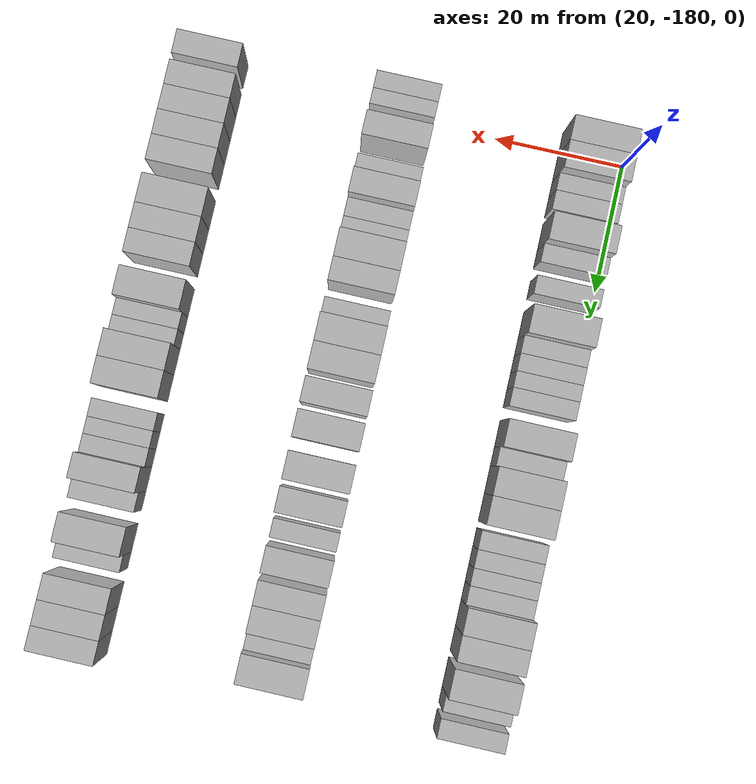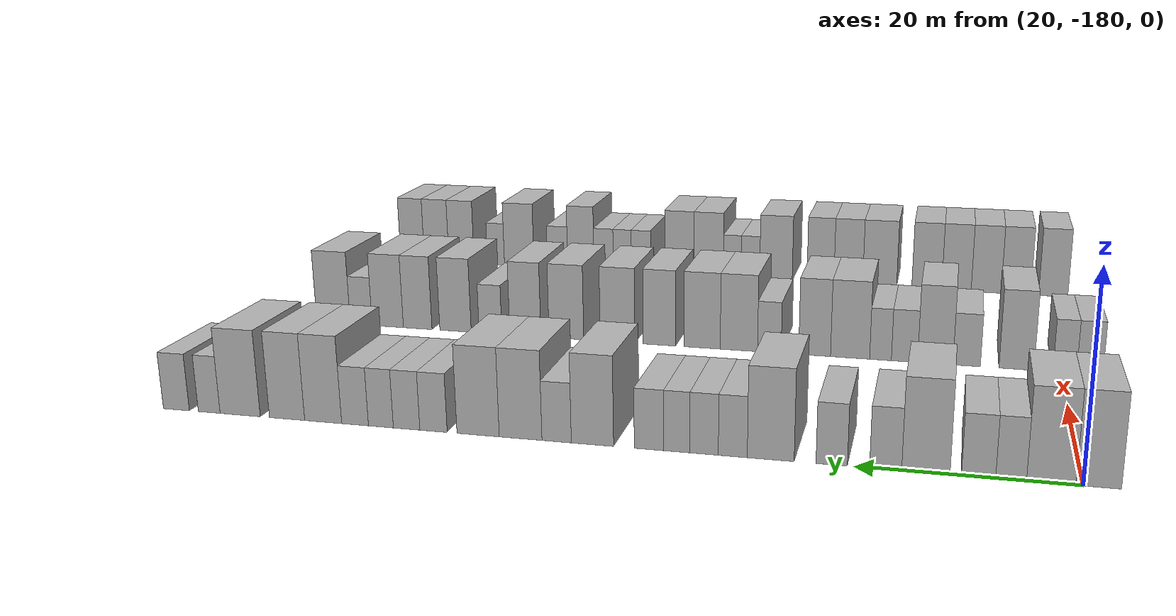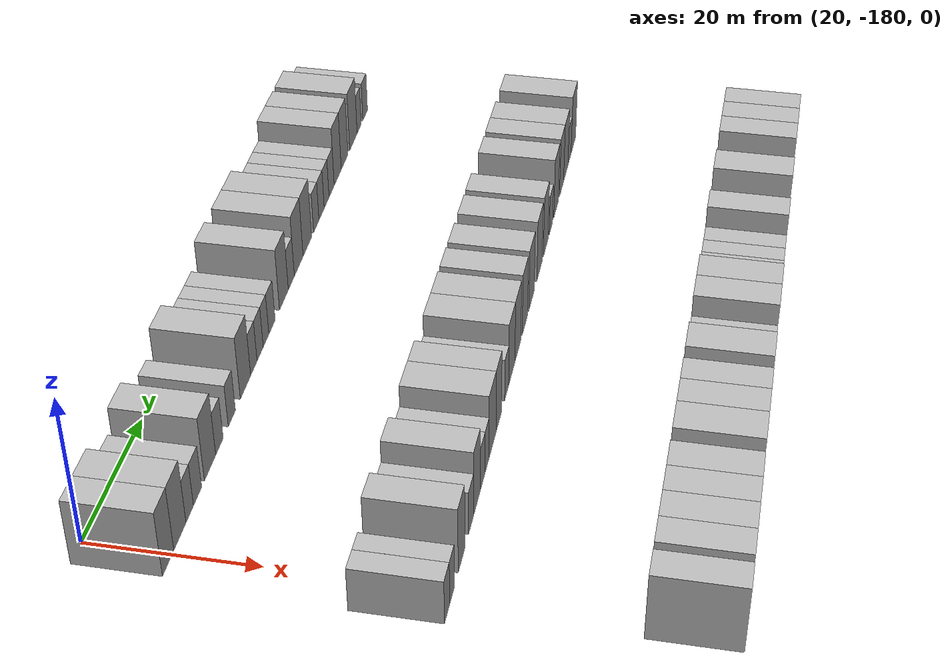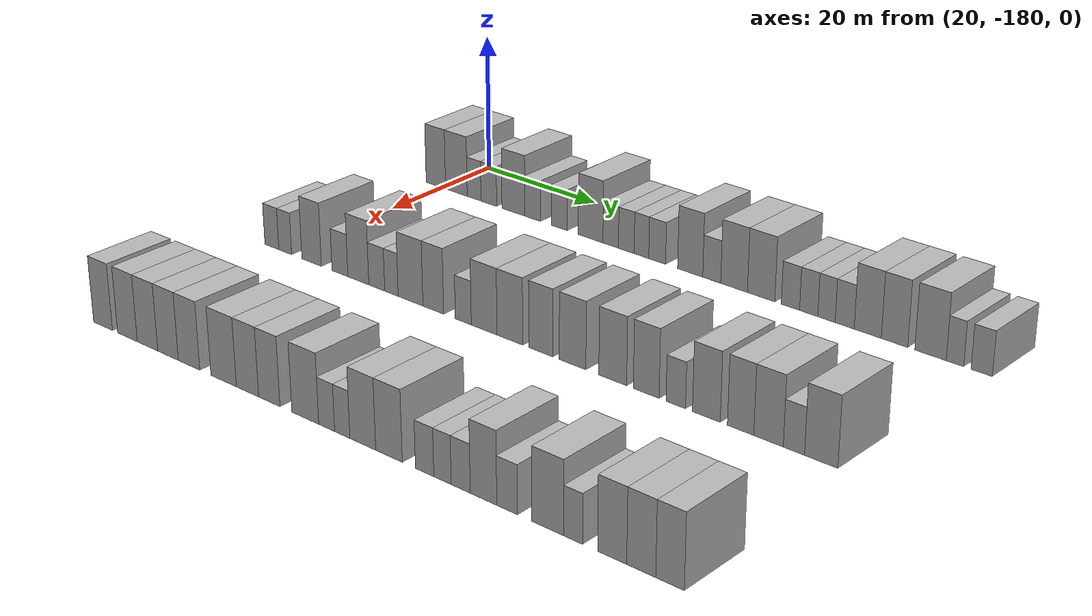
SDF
<sdf version="1.6">
 <world name="default">
  <model name="building_22">
   <static>1</static>
   <pose>25.0000 -181.2812 0 0.000000 0.000000 0.000000</pose>
   <link name="link">
    <pose>0 0 4.50 0 0 0</pose>
    <collision name="collision"><geometry><box><size>10.0000 3.8265 9.0000</size></box></geometry></collision>
    <visual name="visual">
     <cast_shadows>0</cast_shadows>
     <geometry><box><size>10.0000 3.8265 9.0000</size></box></geometry>
     <material>
      <script>
       <uri>model://HANNAS_wall/materials/scripts</uri>
       <uri>model://HANNAS_wall/materials/textures</uri>
       <name>vrc/HANNAS_wall</name>
      </script>
     </material>
    </visual>
   </link>
  </model>
  <model name="building_23">
   <static>1</static>
   <pose>25.0000 -177.2653 0 0.000000 0.000000 0.000000</pose>
   <link name="link">
    <pose>0 0 4.50 0 0 0</pose>
    <collision name="collision"><geometry><box><size>10.0000 4.2051 9.0000</size></box></geometry></collision>
    <visual name="visual">
     <cast_shadows>0</cast_shadows>
     <geometry><box><size>10.0000 4.2051 9.0000</size></box></geometry>
     <material>
      <script>
       <uri>model://HANNAS_wall/materials/scripts</uri>
       <uri>model://HANNAS_wall/materials/textures</uri>
       <name>vrc/HANNAS_wall</name>
      </script>
     </material>
    </visual>
   </link>
  </model>
  <model name="building_24">
   <static>1</static>
   <pose>25.0000 -173.8344 0 0.000000 0.000000 0.000000</pose>
   <link name="link">
    <pose>0 0 3.00 0 0 0</pose>
    <collision name="collision"><geometry><box><size>10.0000 2.6567 6.0000</size></box></geometry></collision>
    <visual name="visual">
     <cast_shadows>0</cast_shadows>
     <geometry><box><size>10.0000 2.6567 6.0000</size></box></geometry>
     <material>
      <script>
       <uri>model://HANNAS_wall/materials/scripts</uri>
       <uri>model://HANNAS_wall/materials/textures</uri>
       <name>vrc/HANNAS_wall</name>
      </script>
     </material>
    </visual>
   </link>
  </model>
  <model name="building_25">
   <static>1</static>
   <pose>25.0000 -171.0169 0 0.000000 0.000000 0.000000</pose>
   <link name="link">
    <pose>0 0 3.00 0 0 0</pose>
    <collision name="collision"><geometry><box><size>10.0000 2.9782 6.0000</size></box></geometry></collision>
    <visual name="visual">
     <cast_shadows>0</cast_shadows>
     <geometry><box><size>10.0000 2.9782 6.0000</size></box></geometry>
     <material>
      <script>
       <uri>model://HANNAS_wall/materials/scripts</uri>
       <uri>model://HANNAS_wall/materials/textures</uri>
       <name>vrc/HANNAS_wall</name>
      </script>
     </material>
    </visual>
   </link>
  </model>
  <model name="building_26">
   <static>1</static>
   <pose>25.0000 -166.3937 0 0.000000 0.000000 0.000000</pose>
   <link name="link">
    <pose>0 0 4.50 0 0 0</pose>
    <collision name="collision"><geometry><box><size>10.0000 4.2682 9.0000</size></box></geometry></collision>
    <visual name="visual">
     <cast_shadows>0</cast_shadows>
     <geometry><box><size>10.0000 4.2682 9.0000</size></box></geometry>
     <material>
      <script>
       <uri>model://HANNAS_wall/materials/scripts</uri>
       <uri>model://HANNAS_wall/materials/textures</uri>
       <name>vrc/HANNAS_wall</name>
      </script>
     </material>
    </visual>
   </link>
  </model>
  <model name="building_27">
   <static>1</static>
   <pose>25.0000 -162.8263 0 0.000000 0.000000 0.000000</pose>
   <link name="link">
    <pose>0 0 3.00 0 0 0</pose>
    <collision name="collision"><geometry><box><size>10.0000 2.8666 6.0000</size></box></geometry></collision>
    <visual name="visual">
     <cast_shadows>0</cast_shadows>
     <geometry><box><size>10.0000 2.8666 6.0000</size></box></geometry>
     <material>
      <script>
       <uri>model://HANNAS_wall/materials/scripts</uri>
       <uri>model://HANNAS_wall/materials/textures</uri>
       <name>vrc/HANNAS_wall</name>
      </script>
     </material>
    </visual>
   </link>
  </model>
  <model name="building_28">
   <static>1</static>
   <pose>25.0000 -157.9674 0 0.000000 0.000000 0.000000</pose>
   <link name="link">
    <pose>0 0 3.00 0 0 0</pose>
    <collision name="collision"><geometry><box><size>10.0000 2.8514 6.0000</size></box></geometry></collision>
    <visual name="visual">
     <cast_shadows>0</cast_shadows>
     <geometry><box><size>10.0000 2.8514 6.0000</size></box></geometry>
     <material>
      <script>
       <uri>model://HANNAS_wall/materials/scripts</uri>
       <uri>model://HANNAS_wall/materials/textures</uri>
       <name>vrc/HANNAS_wall</name>
      </script>
     </material>
    </visual>
   </link>
  </model>
  <model name="building_29">
   <static>1</static>
   <pose>25.0000 -152.3742 0 0.000000 0.000000 0.000000</pose>
   <link name="link">
    <pose>0 0 4.50 0 0 0</pose>
    <collision name="collision"><geometry><box><size>10.0000 4.3349 9.0000</size></box></geometry></collision>
    <visual name="visual">
     <cast_shadows>0</cast_shadows>
     <geometry><box><size>10.0000 4.3349 9.0000</size></box></geometry>
     <material>
      <script>
       <uri>model://HANNAS_wall/materials/scripts</uri>
       <uri>model://HANNAS_wall/materials/textures</uri>
       <name>vrc/HANNAS_wall</name>
      </script>
     </material>
    </visual>
   </link>
  </model>
  <model name="building_30">
   <static>1</static>
   <pose>25.0000 -148.8519 0 0.000000 0.000000 0.000000</pose>
   <link name="link">
    <pose>0 0 3.00 0 0 0</pose>
    <collision name="collision"><geometry><box><size>10.0000 2.7098 6.0000</size></box></geometry></collision>
    <visual name="visual">
     <cast_shadows>0</cast_shadows>
     <geometry><box><size>10.0000 2.7098 6.0000</size></box></geometry>
     <material>
      <script>
       <uri>model://HANNAS_wall/materials/scripts</uri>
       <uri>model://HANNAS_wall/materials/textures</uri>
       <name>vrc/HANNAS_wall</name>
      </script>
     </material>
    </visual>
   </link>
  </model>
  <model name="building_31">
   <static>1</static>
   <pose>25.0000 -146.1571 0 0.000000 0.000000 0.000000</pose>
   <link name="link">
    <pose>0 0 3.00 0 0 0</pose>
    <collision name="collision"><geometry><box><size>10.0000 2.6797 6.0000</size></box></geometry></collision>
    <visual name="visual">
     <cast_shadows>0</cast_shadows>
     <geometry><box><size>10.0000 2.6797 6.0000</size></box></geometry>
     <material>
      <script>
       <uri>model://HANNAS_wall/materials/scripts</uri>
       <uri>model://HANNAS_wall/materials/textures</uri>
       <name>vrc/HANNAS_wall</name>
      </script>
     </material>
    </visual>
   </link>
  </model>
  <model name="building_32">
   <static>1</static>
   <pose>25.0000 -143.5729 0 0.000000 0.000000 0.000000</pose>
   <link name="link">
    <pose>0 0 3.00 0 0 0</pose>
    <collision name="collision"><geometry><box><size>10.0000 2.4887 6.0000</size></box></geometry></collision>
    <visual name="visual">
     <cast_shadows>0</cast_shadows>
     <geometry><box><size>10.0000 2.4887 6.0000</size></box></geometry>
     <material>
      <script>
       <uri>model://HANNAS_wall/materials/scripts</uri>
       <uri>model://HANNAS_wall/materials/textures</uri>
       <name>vrc/HANNAS_wall</name>
      </script>
     </material>
    </visual>
   </link>
  </model>
  <model name="building_33">
   <static>1</static>
   <pose>25.0000 -140.9123 0 0.000000 0.000000 0.000000</pose>
   <link name="link">
    <pose>0 0 3.00 0 0 0</pose>
    <collision name="collision"><geometry><box><size>10.0000 2.8326 6.0000</size></box></geometry></collision>
    <visual name="visual">
     <cast_shadows>0</cast_shadows>
     <geometry><box><size>10.0000 2.8326 6.0000</size></box></geometry>
     <material>
      <script>
       <uri>model://HANNAS_wall/materials/scripts</uri>
       <uri>model://HANNAS_wall/materials/textures</uri>
       <name>vrc/HANNAS_wall</name>
      </script>
     </material>
    </visual>
   </link>
  </model>
  <model name="building_34">
   <static>1</static>
   <pose>25.0000 -135.4282 0 0.000000 0.000000 0.000000</pose>
   <link name="link">
    <pose>0 0 4.50 0 0 0</pose>
    <collision name="collision"><geometry><box><size>10.0000 4.1356 9.0000</size></box></geometry></collision>
    <visual name="visual">
     <cast_shadows>0</cast_shadows>
     <geometry><box><size>10.0000 4.1356 9.0000</size></box></geometry>
     <material>
      <script>
       <uri>model://HANNAS_wall/materials/scripts</uri>
       <uri>model://HANNAS_wall/materials/textures</uri>
       <name>vrc/HANNAS_wall</name>
      </script>
     </material>
    </visual>
   </link>
  </model>
  <model name="building_35">
   <static>1</static>
   <pose>25.0000 -131.9099 0 0.000000 0.000000 0.000000</pose>
   <link name="link">
    <pose>0 0 3.00 0 0 0</pose>
    <collision name="collision"><geometry><box><size>10.0000 2.9009 6.0000</size></box></geometry></collision>
    <visual name="visual">
     <cast_shadows>0</cast_shadows>
     <geometry><box><size>10.0000 2.9009 6.0000</size></box></geometry>
     <material>
      <script>
       <uri>model://HANNAS_wall/materials/scripts</uri>
       <uri>model://HANNAS_wall/materials/textures</uri>
       <name>vrc/HANNAS_wall</name>
      </script>
     </material>
    </visual>
   </link>
  </model>
  <model name="building_36">
   <static>1</static>
   <pose>25.0000 -128.3235 0 0.000000 0.000000 0.000000</pose>
   <link name="link">
    <pose>0 0 4.50 0 0 0</pose>
    <collision name="collision"><geometry><box><size>10.0000 4.2720 9.0000</size></box></geometry></collision>
    <visual name="visual">
     <cast_shadows>0</cast_shadows>
     <geometry><box><size>10.0000 4.2720 9.0000</size></box></geometry>
     <material>
      <script>
       <uri>model://HANNAS_wall/materials/scripts</uri>
       <uri>model://HANNAS_wall/materials/textures</uri>
       <name>vrc/HANNAS_wall</name>
      </script>
     </material>
    </visual>
   </link>
  </model>
  <model name="building_37">
   <static>1</static>
   <pose>25.0000 -124.0453 0 0.000000 0.000000 0.000000</pose>
   <link name="link">
    <pose>0 0 4.50 0 0 0</pose>
    <collision name="collision"><geometry><box><size>10.0000 4.2843 9.0000</size></box></geometry></collision>
    <visual name="visual">
     <cast_shadows>0</cast_shadows>
     <geometry><box><size>10.0000 4.2843 9.0000</size></box></geometry>
     <material>
      <script>
       <uri>model://HANNAS_wall/materials/scripts</uri>
       <uri>model://HANNAS_wall/materials/textures</uri>
       <name>vrc/HANNAS_wall</name>
      </script>
     </material>
    </visual>
   </link>
  </model>
  <model name="building_38">
   <static>1</static>
   <pose>25.0000 -119.4989 0 0.000000 0.000000 0.000000</pose>
   <link name="link">
    <pose>0 0 3.00 0 0 0</pose>
    <collision name="collision"><geometry><box><size>10.0000 2.8086 6.0000</size></box></geometry></collision>
    <visual name="visual">
     <cast_shadows>0</cast_shadows>
     <geometry><box><size>10.0000 2.8086 6.0000</size></box></geometry>
     <material>
      <script>
       <uri>model://HANNAS_wall/materials/scripts</uri>
       <uri>model://HANNAS_wall/materials/textures</uri>
       <name>vrc/HANNAS_wall</name>
      </script>
     </material>
    </visual>
   </link>
  </model>
  <model name="building_39">
   <static>1</static>
   <pose>25.0000 -116.7189 0 0.000000 0.000000 0.000000</pose>
   <link name="link">
    <pose>0 0 3.00 0 0 0</pose>
    <collision name="collision"><geometry><box><size>10.0000 2.7514 6.0000</size></box></geometry></collision>
    <visual name="visual">
     <cast_shadows>0</cast_shadows>
     <geometry><box><size>10.0000 2.7514 6.0000</size></box></geometry>
     <material>
      <script>
       <uri>model://HANNAS_wall/materials/scripts</uri>
       <uri>model://HANNAS_wall/materials/textures</uri>
       <name>vrc/HANNAS_wall</name>
      </script>
     </material>
    </visual>
   </link>
  </model>
  <model name="building_40">
   <static>1</static>
   <pose>25.0000 -114.0413 0 0.000000 0.000000 0.000000</pose>
   <link name="link">
    <pose>0 0 3.00 0 0 0</pose>
    <collision name="collision"><geometry><box><size>10.0000 2.6038 6.0000</size></box></geometry></collision>
    <visual name="visual">
     <cast_shadows>0</cast_shadows>
     <geometry><box><size>10.0000 2.6038 6.0000</size></box></geometry>
     <material>
      <script>
       <uri>model://HANNAS_wall/materials/scripts</uri>
       <uri>model://HANNAS_wall/materials/textures</uri>
       <name>vrc/HANNAS_wall</name>
      </script>
     </material>
    </visual>
   </link>
  </model>
  <model name="building_41">
   <static>1</static>
   <pose>25.0000 -111.3283 0 0.000000 0.000000 0.000000</pose>
   <link name="link">
    <pose>0 0 3.00 0 0 0</pose>
    <collision name="collision"><geometry><box><size>10.0000 2.8221 6.0000</size></box></geometry></collision>
    <visual name="visual">
     <cast_shadows>0</cast_shadows>
     <geometry><box><size>10.0000 2.8221 6.0000</size></box></geometry>
     <material>
      <script>
       <uri>model://HANNAS_wall/materials/scripts</uri>
       <uri>model://HANNAS_wall/materials/textures</uri>
       <name>vrc/HANNAS_wall</name>
      </script>
     </material>
    </visual>
   </link>
  </model>
  <model name="building_42">
   <static>1</static>
   <pose>25.0000 -107.9474 0 0.000000 0.000000 0.000000</pose>
   <link name="link">
    <pose>0 0 4.50 0 0 0</pose>
    <collision name="collision"><geometry><box><size>10.0000 3.9398 9.0000</size></box></geometry></collision>
    <visual name="visual">
     <cast_shadows>0</cast_shadows>
     <geometry><box><size>10.0000 3.9398 9.0000</size></box></geometry>
     <material>
      <script>
       <uri>model://HANNAS_wall/materials/scripts</uri>
       <uri>model://HANNAS_wall/materials/textures</uri>
       <name>vrc/HANNAS_wall</name>
      </script>
     </material>
    </visual>
   </link>
  </model>
  <model name="building_43">
   <static>1</static>
   <pose>25.0000 -104.0791 0 0.000000 0.000000 0.000000</pose>
   <link name="link">
    <pose>0 0 4.50 0 0 0</pose>
    <collision name="collision"><geometry><box><size>10.0000 3.7968 9.0000</size></box></geometry></collision>
    <visual name="visual">
     <cast_shadows>0</cast_shadows>
     <geometry><box><size>10.0000 3.7968 9.0000</size></box></geometry>
     <material>
      <script>
       <uri>model://HANNAS_wall/materials/scripts</uri>
       <uri>model://HANNAS_wall/materials/textures</uri>
       <name>vrc/HANNAS_wall</name>
      </script>
     </material>
    </visual>
   </link>
  </model>
  <model name="building_44">
   <static>1</static>
   <pose>25.0000 -98.9828 0 0.000000 0.000000 0.000000</pose>
   <link name="link">
    <pose>0 0 4.50 0 0 0</pose>
    <collision name="collision"><geometry><box><size>10.0000 4.3958 9.0000</size></box></geometry></collision>
    <visual name="visual">
     <cast_shadows>0</cast_shadows>
     <geometry><box><size>10.0000 4.3958 9.0000</size></box></geometry>
     <material>
      <script>
       <uri>model://HANNAS_wall/materials/scripts</uri>
       <uri>model://HANNAS_wall/materials/textures</uri>
       <name>vrc/HANNAS_wall</name>
      </script>
     </material>
    </visual>
   </link>
  </model>
  <model name="building_45">
   <static>1</static>
   <pose>25.0000 -95.5806 0 0.000000 0.000000 0.000000</pose>
   <link name="link">
    <pose>0 0 3.00 0 0 0</pose>
    <collision name="collision"><geometry><box><size>10.0000 2.4086 6.0000</size></box></geometry></collision>
    <visual name="visual">
     <cast_shadows>0</cast_shadows>
     <geometry><box><size>10.0000 2.4086 6.0000</size></box></geometry>
     <material>
      <script>
       <uri>model://HANNAS_wall/materials/scripts</uri>
       <uri>model://HANNAS_wall/materials/textures</uri>
       <name>vrc/HANNAS_wall</name>
      </script>
     </material>
    </visual>
   </link>
  </model>
  <model name="building_46">
   <static>1</static>
   <pose>25.0000 -91.9295 0 0.000000 0.000000 0.000000</pose>
   <link name="link">
    <pose>0 0 3.00 0 0 0</pose>
    <collision name="collision"><geometry><box><size>10.0000 2.8937 6.0000</size></box></geometry></collision>
    <visual name="visual">
     <cast_shadows>0</cast_shadows>
     <geometry><box><size>10.0000 2.8937 6.0000</size></box></geometry>
     <material>
      <script>
       <uri>model://HANNAS_wall/materials/scripts</uri>
       <uri>model://HANNAS_wall/materials/textures</uri>
       <name>vrc/HANNAS_wall</name>
      </script>
     </material>
    </visual>
   </link>
  </model>
  <model name="building_171">
   <static>1</static>
   <pose>55.0000 -182.9844 0 0.000000 0.000000 0.000000</pose>
   <link name="link">
    <pose>0 0 3.00 0 0 0</pose>
    <collision name="collision"><geometry><box><size>10.0000 2.7429 6.0000</size></box></geometry></collision>
    <visual name="visual">
     <cast_shadows>0</cast_shadows>
     <geometry><box><size>10.0000 2.7429 6.0000</size></box></geometry>
     <material>
      <script>
       <uri>model://HANNAS_wall/materials/scripts</uri>
       <uri>model://HANNAS_wall/materials/textures</uri>
       <name>vrc/HANNAS_wall</name>
      </script>
     </material>
    </visual>
   </link>
  </model>
  <model name="building_172">
   <static>1</static>
   <pose>55.0000 -180.3671 0 0.000000 0.000000 0.000000</pose>
   <link name="link">
    <pose>0 0 3.00 0 0 0</pose>
    <collision name="collision"><geometry><box><size>10.0000 2.4916 6.0000</size></box></geometry></collision>
    <visual name="visual">
     <cast_shadows>0</cast_shadows>
     <geometry><box><size>10.0000 2.4916 6.0000</size></box></geometry>
     <material>
      <script>
       <uri>model://HANNAS_wall/materials/scripts</uri>
       <uri>model://HANNAS_wall/materials/textures</uri>
       <name>vrc/HANNAS_wall</name>
      </script>
     </material>
    </visual>
   </link>
  </model>
  <model name="building_173">
   <static>1</static>
   <pose>55.0000 -175.2502 0 0.000000 0.000000 0.000000</pose>
   <link name="link">
    <pose>0 0 4.50 0 0 0</pose>
    <collision name="collision"><geometry><box><size>10.0000 3.7422 9.0000</size></box></geometry></collision>
    <visual name="visual">
     <cast_shadows>0</cast_shadows>
     <geometry><box><size>10.0000 3.7422 9.0000</size></box></geometry>
     <material>
      <script>
       <uri>model://HANNAS_wall/materials/scripts</uri>
       <uri>model://HANNAS_wall/materials/textures</uri>
       <name>vrc/HANNAS_wall</name>
      </script>
     </material>
    </visual>
   </link>
  </model>
  <model name="building_174">
   <static>1</static>
   <pose>55.0000 -169.8975 0 0.000000 0.000000 0.000000</pose>
   <link name="link">
    <pose>0 0 3.00 0 0 0</pose>
    <collision name="collision"><geometry><box><size>10.0000 2.9632 6.0000</size></box></geometry></collision>
    <visual name="visual">
     <cast_shadows>0</cast_shadows>
     <geometry><box><size>10.0000 2.9632 6.0000</size></box></geometry>
     <material>
      <script>
       <uri>model://HANNAS_wall/materials/scripts</uri>
       <uri>model://HANNAS_wall/materials/textures</uri>
       <name>vrc/HANNAS_wall</name>
      </script>
     </material>
    </visual>
   </link>
  </model>
  <model name="building_175">
   <static>1</static>
   <pose>55.0000 -166.4838 0 0.000000 0.000000 0.000000</pose>
   <link name="link">
    <pose>0 0 4.50 0 0 0</pose>
    <collision name="collision"><geometry><box><size>10.0000 3.8642 9.0000</size></box></geometry></collision>
    <visual name="visual">
     <cast_shadows>0</cast_shadows>
     <geometry><box><size>10.0000 3.8642 9.0000</size></box></geometry>
     <material>
      <script>
       <uri>model://HANNAS_wall/materials/scripts</uri>
       <uri>model://HANNAS_wall/materials/textures</uri>
       <name>vrc/HANNAS_wall</name>
      </script>
     </material>
    </visual>
   </link>
  </model>
  <model name="building_176">
   <static>1</static>
   <pose>55.0000 -163.1049 0 0.000000 0.000000 0.000000</pose>
   <link name="link">
    <pose>0 0 3.00 0 0 0</pose>
    <collision name="collision"><geometry><box><size>10.0000 2.8937 6.0000</size></box></geometry></collision>
    <visual name="visual">
     <cast_shadows>0</cast_shadows>
     <geometry><box><size>10.0000 2.8937 6.0000</size></box></geometry>
     <material>
      <script>
       <uri>model://HANNAS_wall/materials/scripts</uri>
       <uri>model://HANNAS_wall/materials/textures</uri>
       <name>vrc/HANNAS_wall</name>
      </script>
     </material>
    </visual>
   </link>
  </model>
  <model name="building_177">
   <static>1</static>
   <pose>55.0000 -160.4513 0 0.000000 0.000000 0.000000</pose>
   <link name="link">
    <pose>0 0 3.00 0 0 0</pose>
    <collision name="collision"><geometry><box><size>10.0000 2.4135 6.0000</size></box></geometry></collision>
    <visual name="visual">
     <cast_shadows>0</cast_shadows>
     <geometry><box><size>10.0000 2.4135 6.0000</size></box></geometry>
     <material>
      <script>
       <uri>model://HANNAS_wall/materials/scripts</uri>
       <uri>model://HANNAS_wall/materials/textures</uri>
       <name>vrc/HANNAS_wall</name>
      </script>
     </material>
    </visual>
   </link>
  </model>
  <model name="building_178">
   <static>1</static>
   <pose>55.0000 -157.0525 0 0.000000 0.000000 0.000000</pose>
   <link name="link">
    <pose>0 0 4.50 0 0 0</pose>
    <collision name="collision"><geometry><box><size>10.0000 4.3841 9.0000</size></box></geometry></collision>
    <visual name="visual">
     <cast_shadows>0</cast_shadows>
     <geometry><box><size>10.0000 4.3841 9.0000</size></box></geometry>
     <material>
      <script>
       <uri>model://HANNAS_wall/materials/scripts</uri>
       <uri>model://HANNAS_wall/materials/textures</uri>
       <name>vrc/HANNAS_wall</name>
      </script>
     </material>
    </visual>
   </link>
  </model>
  <model name="building_179">
   <static>1</static>
   <pose>55.0000 -153.0569 0 0.000000 0.000000 0.000000</pose>
   <link name="link">
    <pose>0 0 4.50 0 0 0</pose>
    <collision name="collision"><geometry><box><size>10.0000 3.6070 9.0000</size></box></geometry></collision>
    <visual name="visual">
     <cast_shadows>0</cast_shadows>
     <geometry><box><size>10.0000 3.6070 9.0000</size></box></geometry>
     <material>
      <script>
       <uri>model://HANNAS_wall/materials/scripts</uri>
       <uri>model://HANNAS_wall/materials/textures</uri>
       <name>vrc/HANNAS_wall</name>
      </script>
     </material>
    </visual>
   </link>
  </model>
  <model name="building_180">
   <static>1</static>
   <pose>55.0000 -147.8962 0 0.000000 0.000000 0.000000</pose>
   <link name="link">
    <pose>0 0 3.00 0 0 0</pose>
    <collision name="collision"><geometry><box><size>10.0000 2.7145 6.0000</size></box></geometry></collision>
    <visual name="visual">
     <cast_shadows>0</cast_shadows>
     <geometry><box><size>10.0000 2.7145 6.0000</size></box></geometry>
     <material>
      <script>
       <uri>model://HANNAS_wall/materials/scripts</uri>
       <uri>model://HANNAS_wall/materials/textures</uri>
       <name>vrc/HANNAS_wall</name>
      </script>
     </material>
    </visual>
   </link>
  </model>
  <model name="building_181">
   <static>1</static>
   <pose>55.0000 -144.3848 0 0.000000 0.000000 0.000000</pose>
   <link name="link">
    <pose>0 0 4.50 0 0 0</pose>
    <collision name="collision"><geometry><box><size>10.0000 4.3083 9.0000</size></box></geometry></collision>
    <visual name="visual">
     <cast_shadows>0</cast_shadows>
     <geometry><box><size>10.0000 4.3083 9.0000</size></box></geometry>
     <material>
      <script>
       <uri>model://HANNAS_wall/materials/scripts</uri>
       <uri>model://HANNAS_wall/materials/textures</uri>
       <name>vrc/HANNAS_wall</name>
      </script>
     </material>
    </visual>
   </link>
  </model>
  <model name="building_182">
   <static>1</static>
   <pose>55.0000 -140.1165 0 0.000000 0.000000 0.000000</pose>
   <link name="link">
    <pose>0 0 4.50 0 0 0</pose>
    <collision name="collision"><geometry><box><size>10.0000 4.2282 9.0000</size></box></geometry></collision>
    <visual name="visual">
     <cast_shadows>0</cast_shadows>
     <geometry><box><size>10.0000 4.2282 9.0000</size></box></geometry>
     <material>
      <script>
       <uri>model://HANNAS_wall/materials/scripts</uri>
       <uri>model://HANNAS_wall/materials/textures</uri>
       <name>vrc/HANNAS_wall</name>
      </script>
     </material>
    </visual>
   </link>
  </model>
  <model name="building_183">
   <static>1</static>
   <pose>55.0000 -135.0719 0 0.000000 0.000000 0.000000</pose>
   <link name="link">
    <pose>0 0 4.50 0 0 0</pose>
    <collision name="collision"><geometry><box><size>10.0000 3.8611 9.0000</size></box></geometry></collision>
    <visual name="visual">
     <cast_shadows>0</cast_shadows>
     <geometry><box><size>10.0000 3.8611 9.0000</size></box></geometry>
     <material>
      <script>
       <uri>model://HANNAS_wall/materials/scripts</uri>
       <uri>model://HANNAS_wall/materials/textures</uri>
       <name>vrc/HANNAS_wall</name>
      </script>
     </material>
    </visual>
   </link>
  </model>
  <model name="building_184">
   <static>1</static>
   <pose>55.0000 -130.0602 0 0.000000 0.000000 0.000000</pose>
   <link name="link">
    <pose>0 0 4.50 0 0 0</pose>
    <collision name="collision"><geometry><box><size>10.0000 4.1622 9.0000</size></box></geometry></collision>
    <visual name="visual">
     <cast_shadows>0</cast_shadows>
     <geometry><box><size>10.0000 4.1622 9.0000</size></box></geometry>
     <material>
      <script>
       <uri>model://HANNAS_wall/materials/scripts</uri>
       <uri>model://HANNAS_wall/materials/textures</uri>
       <name>vrc/HANNAS_wall</name>
      </script>
     </material>
    </visual>
   </link>
  </model>
  <model name="building_185">
   <static>1</static>
   <pose>55.0000 -123.8568 0 0.000000 0.000000 0.000000</pose>
   <link name="link">
    <pose>0 0 4.50 0 0 0</pose>
    <collision name="collision"><geometry><box><size>10.0000 4.2445 9.0000</size></box></geometry></collision>
    <visual name="visual">
     <cast_shadows>0</cast_shadows>
     <geometry><box><size>10.0000 4.2445 9.0000</size></box></geometry>
     <material>
      <script>
       <uri>model://HANNAS_wall/materials/scripts</uri>
       <uri>model://HANNAS_wall/materials/textures</uri>
       <name>vrc/HANNAS_wall</name>
      </script>
     </material>
    </visual>
   </link>
  </model>
  <model name="building_186">
   <static>1</static>
   <pose>55.0000 -118.8119 0 0.000000 0.000000 0.000000</pose>
   <link name="link">
    <pose>0 0 4.50 0 0 0</pose>
    <collision name="collision"><geometry><box><size>10.0000 3.8454 9.0000</size></box></geometry></collision>
    <visual name="visual">
     <cast_shadows>0</cast_shadows>
     <geometry><box><size>10.0000 3.8454 9.0000</size></box></geometry>
     <material>
      <script>
       <uri>model://HANNAS_wall/materials/scripts</uri>
       <uri>model://HANNAS_wall/materials/textures</uri>
       <name>vrc/HANNAS_wall</name>
      </script>
     </material>
    </visual>
   </link>
  </model>
  <model name="building_187">
   <static>1</static>
   <pose>55.0000 -114.4673 0 0.000000 0.000000 0.000000</pose>
   <link name="link">
    <pose>0 0 3.00 0 0 0</pose>
    <collision name="collision"><geometry><box><size>10.0000 2.8437 6.0000</size></box></geometry></collision>
    <visual name="visual">
     <cast_shadows>0</cast_shadows>
     <geometry><box><size>10.0000 2.8437 6.0000</size></box></geometry>
     <material>
      <script>
       <uri>model://HANNAS_wall/materials/scripts</uri>
       <uri>model://HANNAS_wall/materials/textures</uri>
       <name>vrc/HANNAS_wall</name>
      </script>
     </material>
    </visual>
   </link>
  </model>
  <model name="building_188">
   <static>1</static>
   <pose>55.0000 -110.0602 0 0.000000 0.000000 0.000000</pose>
   <link name="link">
    <pose>0 0 4.50 0 0 0</pose>
    <collision name="collision"><geometry><box><size>10.0000 3.9705 9.0000</size></box></geometry></collision>
    <visual name="visual">
     <cast_shadows>0</cast_shadows>
     <geometry><box><size>10.0000 3.9705 9.0000</size></box></geometry>
     <material>
      <script>
       <uri>model://HANNAS_wall/materials/scripts</uri>
       <uri>model://HANNAS_wall/materials/textures</uri>
       <name>vrc/HANNAS_wall</name>
      </script>
     </material>
    </visual>
   </link>
  </model>
  <model name="building_189">
   <static>1</static>
   <pose>55.0000 -105.2402 0 0.000000 0.000000 0.000000</pose>
   <link name="link">
    <pose>0 0 4.50 0 0 0</pose>
    <collision name="collision"><geometry><box><size>10.0000 3.6695 9.0000</size></box></geometry></collision>
    <visual name="visual">
     <cast_shadows>0</cast_shadows>
     <geometry><box><size>10.0000 3.6695 9.0000</size></box></geometry>
     <material>
      <script>
       <uri>model://HANNAS_wall/materials/scripts</uri>
       <uri>model://HANNAS_wall/materials/textures</uri>
       <name>vrc/HANNAS_wall</name>
      </script>
     </material>
    </visual>
   </link>
  </model>
  <model name="building_190">
   <static>1</static>
   <pose>55.0000 -101.3886 0 0.000000 0.000000 0.000000</pose>
   <link name="link">
    <pose>0 0 4.50 0 0 0</pose>
    <collision name="collision"><geometry><box><size>10.0000 4.0338 9.0000</size></box></geometry></collision>
    <visual name="visual">
     <cast_shadows>0</cast_shadows>
     <geometry><box><size>10.0000 4.0338 9.0000</size></box></geometry>
     <material>
      <script>
       <uri>model://HANNAS_wall/materials/scripts</uri>
       <uri>model://HANNAS_wall/materials/textures</uri>
       <name>vrc/HANNAS_wall</name>
      </script>
     </material>
    </visual>
   </link>
  </model>
  <model name="building_191">
   <static>1</static>
   <pose>55.0000 -97.9466 0 0.000000 0.000000 0.000000</pose>
   <link name="link">
    <pose>0 0 3.00 0 0 0</pose>
    <collision name="collision"><geometry><box><size>10.0000 2.8502 6.0000</size></box></geometry></collision>
    <visual name="visual">
     <cast_shadows>0</cast_shadows>
     <geometry><box><size>10.0000 2.8502 6.0000</size></box></geometry>
     <material>
      <script>
       <uri>model://HANNAS_wall/materials/scripts</uri>
       <uri>model://HANNAS_wall/materials/textures</uri>
       <name>vrc/HANNAS_wall</name>
      </script>
     </material>
    </visual>
   </link>
  </model>
  <model name="building_192">
   <static>1</static>
   <pose>55.0000 -94.3193 0 0.000000 0.000000 0.000000</pose>
   <link name="link">
    <pose>0 0 4.50 0 0 0</pose>
    <collision name="collision"><geometry><box><size>10.0000 4.4044 9.0000</size></box></geometry></collision>
    <visual name="visual">
     <cast_shadows>0</cast_shadows>
     <geometry><box><size>10.0000 4.4044 9.0000</size></box></geometry>
     <material>
      <script>
       <uri>model://HANNAS_wall/materials/scripts</uri>
       <uri>model://HANNAS_wall/materials/textures</uri>
       <name>vrc/HANNAS_wall</name>
      </script>
     </material>
    </visual>
   </link>
  </model>
  <model name="building_312">
   <static>1</static>
   <pose>85.0000 -180.8519 0 0.000000 0.000000 0.000000</pose>
   <link name="link">
    <pose>0 0 4.50 0 0 0</pose>
    <collision name="collision"><geometry><box><size>10.0000 3.6800 9.0000</size></box></geometry></collision>
    <visual name="visual">
     <cast_shadows>0</cast_shadows>
     <geometry><box><size>10.0000 3.6800 9.0000</size></box></geometry>
     <material>
      <script>
       <uri>model://HANNAS_wall/materials/scripts</uri>
       <uri>model://HANNAS_wall/materials/textures</uri>
       <name>vrc/HANNAS_wall</name>
      </script>
     </material>
    </visual>
   </link>
  </model>
  <model name="building_313">
   <static>1</static>
   <pose>85.0000 -176.1287 0 0.000000 0.000000 0.000000</pose>
   <link name="link">
    <pose>0 0 4.50 0 0 0</pose>
    <collision name="collision"><geometry><box><size>10.0000 3.7664 9.0000</size></box></geometry></collision>
    <visual name="visual">
     <cast_shadows>0</cast_shadows>
     <geometry><box><size>10.0000 3.7664 9.0000</size></box></geometry>
     <material>
      <script>
       <uri>model://HANNAS_wall/materials/scripts</uri>
       <uri>model://HANNAS_wall/materials/textures</uri>
       <name>vrc/HANNAS_wall</name>
      </script>
     </material>
    </visual>
   </link>
  </model>
  <model name="building_314">
   <static>1</static>
   <pose>85.0000 -172.3147 0 0.000000 0.000000 0.000000</pose>
   <link name="link">
    <pose>0 0 4.50 0 0 0</pose>
    <collision name="collision"><geometry><box><size>10.0000 3.8616 9.0000</size></box></geometry></collision>
    <visual name="visual">
     <cast_shadows>0</cast_shadows>
     <geometry><box><size>10.0000 3.8616 9.0000</size></box></geometry>
     <material>
      <script>
       <uri>model://HANNAS_wall/materials/scripts</uri>
       <uri>model://HANNAS_wall/materials/textures</uri>
       <name>vrc/HANNAS_wall</name>
      </script>
     </material>
    </visual>
   </link>
  </model>
  <model name="building_315">
   <static>1</static>
   <pose>85.0000 -168.4760 0 0.000000 0.000000 0.000000</pose>
   <link name="link">
    <pose>0 0 4.50 0 0 0</pose>
    <collision name="collision"><geometry><box><size>10.0000 3.8157 9.0000</size></box></geometry></collision>
    <visual name="visual">
     <cast_shadows>0</cast_shadows>
     <geometry><box><size>10.0000 3.8157 9.0000</size></box></geometry>
     <material>
      <script>
       <uri>model://HANNAS_wall/materials/scripts</uri>
       <uri>model://HANNAS_wall/materials/textures</uri>
       <name>vrc/HANNAS_wall</name>
      </script>
     </material>
    </visual>
   </link>
  </model>
  <model name="building_316">
   <static>1</static>
   <pose>85.0000 -164.6145 0 0.000000 0.000000 0.000000</pose>
   <link name="link">
    <pose>0 0 4.50 0 0 0</pose>
    <collision name="collision"><geometry><box><size>10.0000 3.9074 9.0000</size></box></geometry></collision>
    <visual name="visual">
     <cast_shadows>0</cast_shadows>
     <geometry><box><size>10.0000 3.9074 9.0000</size></box></geometry>
     <material>
      <script>
       <uri>model://HANNAS_wall/materials/scripts</uri>
       <uri>model://HANNAS_wall/materials/textures</uri>
       <name>vrc/HANNAS_wall</name>
      </script>
     </material>
    </visual>
   </link>
  </model>
  <model name="building_317">
   <static>1</static>
   <pose>85.0000 -158.4135 0 0.000000 0.000000 0.000000</pose>
   <link name="link">
    <pose>0 0 4.50 0 0 0</pose>
    <collision name="collision"><geometry><box><size>10.0000 4.4945 9.0000</size></box></geometry></collision>
    <visual name="visual">
     <cast_shadows>0</cast_shadows>
     <geometry><box><size>10.0000 4.4945 9.0000</size></box></geometry>
     <material>
      <script>
       <uri>model://HANNAS_wall/materials/scripts</uri>
       <uri>model://HANNAS_wall/materials/textures</uri>
       <name>vrc/HANNAS_wall</name>
      </script>
     </material>
    </visual>
   </link>
  </model>
  <model name="building_318">
   <static>1</static>
   <pose>85.0000 -154.2337 0 0.000000 0.000000 0.000000</pose>
   <link name="link">
    <pose>0 0 4.50 0 0 0</pose>
    <collision name="collision"><geometry><box><size>10.0000 3.8651 9.0000</size></box></geometry></collision>
    <visual name="visual">
     <cast_shadows>0</cast_shadows>
     <geometry><box><size>10.0000 3.8651 9.0000</size></box></geometry>
     <material>
      <script>
       <uri>model://HANNAS_wall/materials/scripts</uri>
       <uri>model://HANNAS_wall/materials/textures</uri>
       <name>vrc/HANNAS_wall</name>
      </script>
     </material>
    </visual>
   </link>
  </model>
  <model name="building_319">
   <static>1</static>
   <pose>85.0000 -150.4847 0 0.000000 0.000000 0.000000</pose>
   <link name="link">
    <pose>0 0 4.50 0 0 0</pose>
    <collision name="collision"><geometry><box><size>10.0000 3.6330 9.0000</size></box></geometry></collision>
    <visual name="visual">
     <cast_shadows>0</cast_shadows>
     <geometry><box><size>10.0000 3.6330 9.0000</size></box></geometry>
     <material>
      <script>
       <uri>model://HANNAS_wall/materials/scripts</uri>
       <uri>model://HANNAS_wall/materials/textures</uri>
       <name>vrc/HANNAS_wall</name>
      </script>
     </material>
    </visual>
   </link>
  </model>
  <model name="building_320">
   <static>1</static>
   <pose>85.0000 -144.4442 0 0.000000 0.000000 0.000000</pose>
   <link name="link">
    <pose>0 0 4.50 0 0 0</pose>
    <collision name="collision"><geometry><box><size>10.0000 4.4480 9.0000</size></box></geometry></collision>
    <visual name="visual">
     <cast_shadows>0</cast_shadows>
     <geometry><box><size>10.0000 4.4480 9.0000</size></box></geometry>
     <material>
      <script>
       <uri>model://HANNAS_wall/materials/scripts</uri>
       <uri>model://HANNAS_wall/materials/textures</uri>
       <name>vrc/HANNAS_wall</name>
      </script>
     </material>
    </visual>
   </link>
  </model>
  <model name="building_321">
   <static>1</static>
   <pose>85.0000 -140.9321 0 0.000000 0.000000 0.000000</pose>
   <link name="link">
    <pose>0 0 3.00 0 0 0</pose>
    <collision name="collision"><geometry><box><size>10.0000 2.5763 6.0000</size></box></geometry></collision>
    <visual name="visual">
     <cast_shadows>0</cast_shadows>
     <geometry><box><size>10.0000 2.5763 6.0000</size></box></geometry>
     <material>
      <script>
       <uri>model://HANNAS_wall/materials/scripts</uri>
       <uri>model://HANNAS_wall/materials/textures</uri>
       <name>vrc/HANNAS_wall</name>
      </script>
     </material>
    </visual>
   </link>
  </model>
  <model name="building_322">
   <static>1</static>
   <pose>85.0000 -138.4173 0 0.000000 0.000000 0.000000</pose>
   <link name="link">
    <pose>0 0 3.00 0 0 0</pose>
    <collision name="collision"><geometry><box><size>10.0000 2.4532 6.0000</size></box></geometry></collision>
    <visual name="visual">
     <cast_shadows>0</cast_shadows>
     <geometry><box><size>10.0000 2.4532 6.0000</size></box></geometry>
     <material>
      <script>
       <uri>model://HANNAS_wall/materials/scripts</uri>
       <uri>model://HANNAS_wall/materials/textures</uri>
       <name>vrc/HANNAS_wall</name>
      </script>
     </material>
    </visual>
   </link>
  </model>
  <model name="building_323">
   <static>1</static>
   <pose>85.0000 -135.1499 0 0.000000 0.000000 0.000000</pose>
   <link name="link">
    <pose>0 0 4.50 0 0 0</pose>
    <collision name="collision"><geometry><box><size>10.0000 4.0816 9.0000</size></box></geometry></collision>
    <visual name="visual">
     <cast_shadows>0</cast_shadows>
     <geometry><box><size>10.0000 4.0816 9.0000</size></box></geometry>
     <material>
      <script>
       <uri>model://HANNAS_wall/materials/scripts</uri>
       <uri>model://HANNAS_wall/materials/textures</uri>
       <name>vrc/HANNAS_wall</name>
      </script>
     </material>
    </visual>
   </link>
  </model>
  <model name="building_324">
   <static>1</static>
   <pose>85.0000 -131.0511 0 0.000000 0.000000 0.000000</pose>
   <link name="link">
    <pose>0 0 4.50 0 0 0</pose>
    <collision name="collision"><geometry><box><size>10.0000 4.1160 9.0000</size></box></geometry></collision>
    <visual name="visual">
     <cast_shadows>0</cast_shadows>
     <geometry><box><size>10.0000 4.1160 9.0000</size></box></geometry>
     <material>
      <script>
       <uri>model://HANNAS_wall/materials/scripts</uri>
       <uri>model://HANNAS_wall/materials/textures</uri>
       <name>vrc/HANNAS_wall</name>
      </script>
     </material>
    </visual>
   </link>
  </model>
  <model name="building_325">
   <static>1</static>
   <pose>85.0000 -125.6083 0 0.000000 0.000000 0.000000</pose>
   <link name="link">
    <pose>0 0 3.00 0 0 0</pose>
    <collision name="collision"><geometry><box><size>10.0000 2.7697 6.0000</size></box></geometry></collision>
    <visual name="visual">
     <cast_shadows>0</cast_shadows>
     <geometry><box><size>10.0000 2.7697 6.0000</size></box></geometry>
     <material>
      <script>
       <uri>model://HANNAS_wall/materials/scripts</uri>
       <uri>model://HANNAS_wall/materials/textures</uri>
       <name>vrc/HANNAS_wall</name>
      </script>
     </material>
    </visual>
   </link>
  </model>
  <model name="building_326">
   <static>1</static>
   <pose>85.0000 -122.9366 0 0.000000 0.000000 0.000000</pose>
   <link name="link">
    <pose>0 0 3.00 0 0 0</pose>
    <collision name="collision"><geometry><box><size>10.0000 2.5736 6.0000</size></box></geometry></collision>
    <visual name="visual">
     <cast_shadows>0</cast_shadows>
     <geometry><box><size>10.0000 2.5736 6.0000</size></box></geometry>
     <material>
      <script>
       <uri>model://HANNAS_wall/materials/scripts</uri>
       <uri>model://HANNAS_wall/materials/textures</uri>
       <name>vrc/HANNAS_wall</name>
      </script>
     </material>
    </visual>
   </link>
  </model>
  <model name="building_327">
   <static>1</static>
   <pose>85.0000 -120.2519 0 0.000000 0.000000 0.000000</pose>
   <link name="link">
    <pose>0 0 3.00 0 0 0</pose>
    <collision name="collision"><geometry><box><size>10.0000 2.7960 6.0000</size></box></geometry></collision>
    <visual name="visual">
     <cast_shadows>0</cast_shadows>
     <geometry><box><size>10.0000 2.7960 6.0000</size></box></geometry>
     <material>
      <script>
       <uri>model://HANNAS_wall/materials/scripts</uri>
       <uri>model://HANNAS_wall/materials/textures</uri>
       <name>vrc/HANNAS_wall</name>
      </script>
     </material>
    </visual>
   </link>
  </model>
  <model name="building_328">
   <static>1</static>
   <pose>85.0000 -116.9455 0 0.000000 0.000000 0.000000</pose>
   <link name="link">
    <pose>0 0 4.50 0 0 0</pose>
    <collision name="collision"><geometry><box><size>10.0000 3.8168 9.0000</size></box></geometry></collision>
    <visual name="visual">
     <cast_shadows>0</cast_shadows>
     <geometry><box><size>10.0000 3.8168 9.0000</size></box></geometry>
     <material>
      <script>
       <uri>model://HANNAS_wall/materials/scripts</uri>
       <uri>model://HANNAS_wall/materials/textures</uri>
       <name>vrc/HANNAS_wall</name>
      </script>
     </material>
    </visual>
   </link>
  </model>
  <model name="building_329">
   <static>1</static>
   <pose>85.0000 -113.5629 0 0.000000 0.000000 0.000000</pose>
   <link name="link">
    <pose>0 0 3.00 0 0 0</pose>
    <collision name="collision"><geometry><box><size>10.0000 2.9484 6.0000</size></box></geometry></collision>
    <visual name="visual">
     <cast_shadows>0</cast_shadows>
     <geometry><box><size>10.0000 2.9484 6.0000</size></box></geometry>
     <material>
      <script>
       <uri>model://HANNAS_wall/materials/scripts</uri>
       <uri>model://HANNAS_wall/materials/textures</uri>
       <name>vrc/HANNAS_wall</name>
      </script>
     </material>
    </visual>
   </link>
  </model>
  <model name="building_330">
   <static>1</static>
   <pose>85.0000 -107.9046 0 0.000000 0.000000 0.000000</pose>
   <link name="link">
    <pose>0 0 4.50 0 0 0</pose>
    <collision name="collision"><geometry><box><size>10.0000 4.3680 9.0000</size></box></geometry></collision>
    <visual name="visual">
     <cast_shadows>0</cast_shadows>
     <geometry><box><size>10.0000 4.3680 9.0000</size></box></geometry>
     <material>
      <script>
       <uri>model://HANNAS_wall/materials/scripts</uri>
       <uri>model://HANNAS_wall/materials/textures</uri>
       <name>vrc/HANNAS_wall</name>
      </script>
     </material>
    </visual>
   </link>
  </model>
  <model name="building_331">
   <static>1</static>
   <pose>85.0000 -104.4515 0 0.000000 0.000000 0.000000</pose>
   <link name="link">
    <pose>0 0 3.00 0 0 0</pose>
    <collision name="collision"><geometry><box><size>10.0000 2.5383 6.0000</size></box></geometry></collision>
    <visual name="visual">
     <cast_shadows>0</cast_shadows>
     <geometry><box><size>10.0000 2.5383 6.0000</size></box></geometry>
     <material>
      <script>
       <uri>model://HANNAS_wall/materials/scripts</uri>
       <uri>model://HANNAS_wall/materials/textures</uri>
       <name>vrc/HANNAS_wall</name>
      </script>
     </material>
    </visual>
   </link>
  </model>
  <model name="building_332">
   <static>1</static>
   <pose>85.0000 -99.2811 0 0.000000 0.000000 0.000000</pose>
   <link name="link">
    <pose>0 0 4.50 0 0 0</pose>
    <collision name="collision"><geometry><box><size>10.0000 3.8024 9.0000</size></box></geometry></collision>
    <visual name="visual">
     <cast_shadows>0</cast_shadows>
     <geometry><box><size>10.0000 3.8024 9.0000</size></box></geometry>
     <material>
      <script>
       <uri>model://HANNAS_wall/materials/scripts</uri>
       <uri>model://HANNAS_wall/materials/textures</uri>
       <name>vrc/HANNAS_wall</name>
      </script>
     </material>
    </visual>
   </link>
  </model>
  <model name="building_333">
   <static>1</static>
   <pose>85.0000 -95.5166 0 0.000000 0.000000 0.000000</pose>
   <link name="link">
    <pose>0 0 4.50 0 0 0</pose>
    <collision name="collision"><geometry><box><size>10.0000 3.7267 9.0000</size></box></geometry></collision>
    <visual name="visual">
     <cast_shadows>0</cast_shadows>
     <geometry><box><size>10.0000 3.7267 9.0000</size></box></geometry>
     <material>
      <script>
       <uri>model://HANNAS_wall/materials/scripts</uri>
       <uri>model://HANNAS_wall/materials/textures</uri>
       <name>vrc/HANNAS_wall</name>
      </script>
     </material>
    </visual>
   </link>
  </model>
  <model name="building_334">
   <static>1</static>
   <pose>85.0000 -91.8524 0 0.000000 0.000000 0.000000</pose>
   <link name="link">
    <pose>0 0 4.50 0 0 0</pose>
    <collision name="collision"><geometry><box><size>10.0000 3.6018 9.0000</size></box></geometry></collision>
    <visual name="visual">
     <cast_shadows>0</cast_shadows>
     <geometry><box><size>10.0000 3.6018 9.0000</size></box></geometry>
     <material>
      <script>
       <uri>model://HANNAS_wall/materials/scripts</uri>
       <uri>model://HANNAS_wall/materials/textures</uri>
       <name>vrc/HANNAS_wall</name>
      </script>
     </material>
    </visual>
   </link>
  </model>
 </world>
</sdf>
